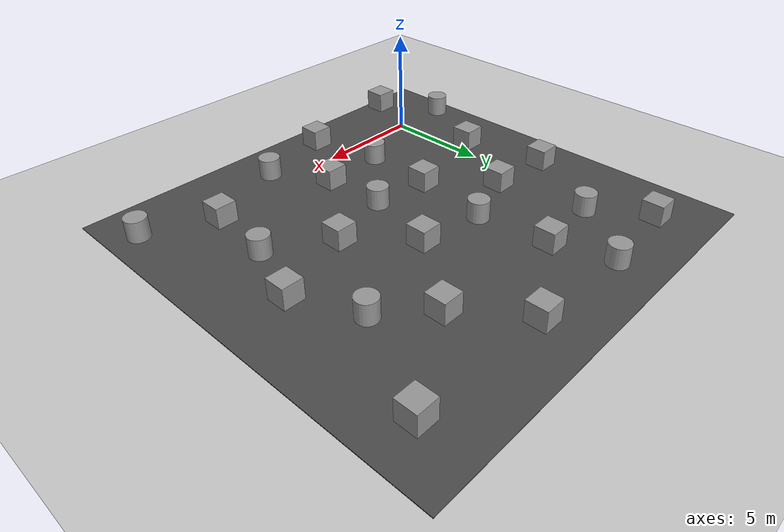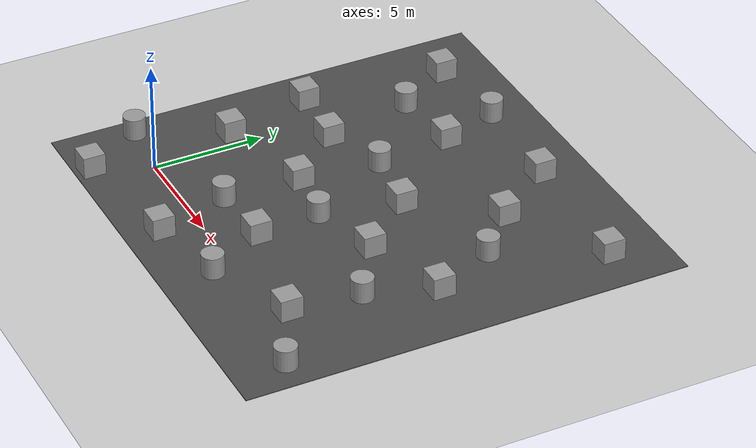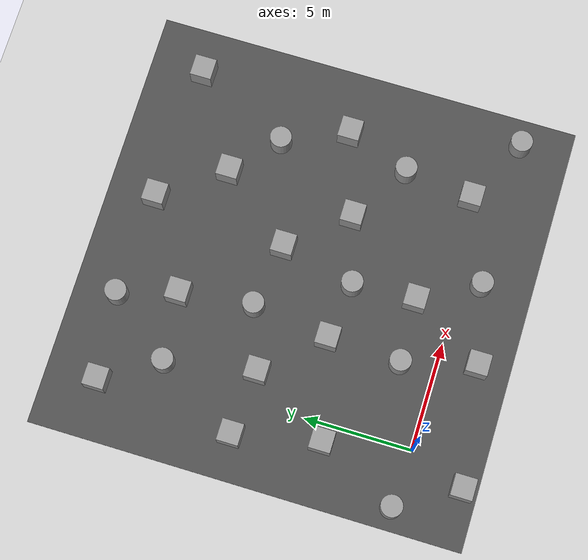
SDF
<sdf version="1.6">
 <world name="default">
  <light name="sun" type="directional">
   <cast_shadows>0</cast_shadows>
   <pose>0 0 10 0 -0 0</pose>
   <diffuse>0.8 0.8 0.8 1</diffuse>
   <specular>0.2 0.2 0.2 1</specular>
   <attenuation>
    <range>1000</range>
    <constant>0.9</constant>
    <linear>0.01</linear>
    <quadratic>0.001</quadratic>
   </attenuation>
   <direction>-0.5 0.1 -0.9</direction>
  </light>
  <model name="ground_plane">
   <static>1</static>
   <link name="link">
    <collision name="collision">
     <geometry><plane><normal>0 0 1</normal><size>100 100</size></plane></geometry>
     <surface><friction><ode><mu>100</mu><mu2>50</mu2></ode></friction></surface>
    </collision>
    <visual name="visual">
     <cast_shadows>0</cast_shadows>
     <geometry><plane><normal>0 0 1</normal><size>100 100</size></plane></geometry>
     <material>
      <script><uri>file://media/materials/scripts/gazebo.material</uri><name>Gazebo/Grey</name></script>
     </material>
    </visual>
   </link>
  </model>
  <gravity>0 0 -9.8</gravity>
  <magnetic_field>6e-06 2.3e-05 -4.2e-05</magnetic_field>
  <atmosphere type="adiabatic"/>
  <physics name="default_physics" default="0" type="ode">
   <max_step_size>0.001</max_step_size>
   <real_time_factor>1</real_time_factor>
   <real_time_update_rate>1000</real_time_update_rate>
  </physics>
  <scene><ambient>0.4 0.4 0.4 1</ambient><background>0.7 0.7 0.7 1</background><shadows>0</shadows></scene>
  <spherical_coordinates>
   <surface_model>EARTH_WGS84</surface_model>
   <latitude_deg>0</latitude_deg>
   <longitude_deg>0</longitude_deg>
   <elevation>0</elevation>
   <heading_deg>0</heading_deg>
  </spherical_coordinates>
  <model name="asphalt_plane">
   <static>1</static>
   <link name="link">
    <collision name="collision"><geometry><box><size>20 20 0.1</size></box></geometry></collision>
    <visual name="visual">
     <cast_shadows>0</cast_shadows>
     <geometry><box><size>20 20 0.1</size></box></geometry>
     <material>
      <script>
       <uri>model://asphalt_plane/materials/scripts</uri>
       <uri>model://asphalt_plane/materials/textures</uri>
       <name>vrc/asphalt</name>
      </script>
     </material>
    </visual>
   </link>
   <pose>6.31642 6.72384 -0.04 0 -0 0</pose>
  </model>
  <model name="unit_box">
   <pose>3.76433 5.01348 0.51 -0 -0 -0</pose>
   <link name="link">
    <inertial>
     <mass>1</mass>
     <inertia>
      <ixx>0.166667</ixx>
      <ixy>0</ixy>
      <ixz>0</ixz>
      <iyy>0.166667</iyy>
      <iyz>0</iyz>
      <izz>0.166667</izz>
     </inertia>
    </inertial>
    <collision name="collision"><geometry><box><size>1 1 1</size></box></geometry></collision>
    <visual name="visual">
     <geometry><box><size>1 1 1</size></box></geometry>
     <material>
      <script><name>Gazebo/Grey</name><uri>file://media/materials/scripts/gazebo.material</uri></script>
     </material>
    </visual>
   </link>
  </model>
  <model name="unit_box_0">
   <pose>6.58811 1.72796 0.51 -0 -0 -0</pose>
   <link name="link">
    <inertial>
     <mass>1</mass>
     <inertia>
      <ixx>0.166667</ixx>
      <ixy>0</ixy>
      <ixz>0</ixz>
      <iyy>0.166667</iyy>
      <iyz>0</iyz>
      <izz>0.166667</izz>
     </inertia>
    </inertial>
    <collision name="collision"><geometry><box><size>1 1 1</size></box></geometry></collision>
    <visual name="visual">
     <geometry><box><size>1 1 1</size></box></geometry>
     <material>
      <script><name>Gazebo/Grey</name><uri>file://media/materials/scripts/gazebo.material</uri></script>
     </material>
    </visual>
   </link>
  </model>
  <model name="unit_box_1">
   <pose>-0.977401 14.3044 0.51 -0 -0 -0</pose>
   <link name="link">
    <inertial>
     <mass>1</mass>
     <inertia>
      <ixx>0.166667</ixx>
      <ixy>0</ixy>
      <ixz>0</ixz>
      <iyy>0.166667</iyy>
      <iyz>0</iyz>
      <izz>0.166667</izz>
     </inertia>
    </inertial>
    <collision name="collision"><geometry><box><size>1 1 1</size></box></geometry></collision>
    <visual name="visual">
     <geometry><box><size>1 1 1</size></box></geometry>
     <material>
      <script><name>Gazebo/Grey</name><uri>file://media/materials/scripts/gazebo.material</uri></script>
     </material>
    </visual>
   </link>
  </model>
  <model name="unit_box_2">
   <pose>-1.62628 7.87108 0.51 -0 -0 -0</pose>
   <link name="link">
    <inertial>
     <mass>1</mass>
     <inertia>
      <ixx>0.166667</ixx>
      <ixy>0</ixy>
      <ixz>0</ixz>
      <iyy>0.166667</iyy>
      <iyz>0</iyz>
      <izz>0.166667</izz>
     </inertia>
    </inertial>
    <collision name="collision"><geometry><box><size>1 1 1</size></box></geometry></collision>
    <visual name="visual">
     <geometry><box><size>1 1 1</size></box></geometry>
     <material>
      <script><name>Gazebo/Grey</name><uri>file://media/materials/scripts/gazebo.material</uri></script>
     </material>
    </visual>
   </link>
  </model>
  <model name="unit_box_3">
   <pose>-0.7811 3.92801 0.51 -0 -0 -0</pose>
   <link name="link">
    <inertial>
     <mass>1</mass>
     <inertia>
      <ixx>0.166667</ixx>
      <ixy>0</ixy>
      <ixz>0</ixz>
      <iyy>0.166667</iyy>
      <iyz>0</iyz>
      <izz>0.166667</izz>
     </inertia>
    </inertial>
    <collision name="collision"><geometry><box><size>1 1 1</size></box></geometry></collision>
    <visual name="visual">
     <geometry><box><size>1 1 1</size></box></geometry>
     <material>
      <script><name>Gazebo/Grey</name><uri>file://media/materials/scripts/gazebo.material</uri></script>
     </material>
    </visual>
   </link>
  </model>
  <model name="unit_box_4">
   <pose>3.80612 12.0392 0.51 -0 -0 -0</pose>
   <link name="link">
    <inertial>
     <mass>1</mass>
     <inertia>
      <ixx>0.166667</ixx>
      <ixy>0</ixy>
      <ixz>0</ixz>
      <iyy>0.166667</iyy>
      <iyz>0</iyz>
      <izz>0.166667</izz>
     </inertia>
    </inertial>
    <collision name="collision"><geometry><box><size>1 1 1</size></box></geometry></collision>
    <visual name="visual">
     <geometry><box><size>1 1 1</size></box></geometry>
     <material>
      <script><name>Gazebo/Grey</name><uri>file://media/materials/scripts/gazebo.material</uri></script>
     </material>
    </visual>
   </link>
  </model>
  <model name="unit_box_5">
   <pose>9.95069 11.5757 0.51 -0 -0 -0</pose>
   <link name="link">
    <inertial>
     <mass>1</mass>
     <inertia>
      <ixx>0.166667</ixx>
      <ixy>0</ixy>
      <ixz>0</ixz>
      <iyy>0.166667</iyy>
      <iyz>0</iyz>
      <izz>0.166667</izz>
     </inertia>
    </inertial>
    <collision name="collision"><geometry><box><size>1 1 1</size></box></geometry></collision>
    <visual name="visual">
     <geometry><box><size>1 1 1</size></box></geometry>
     <material>
      <script><name>Gazebo/Grey</name><uri>file://media/materials/scripts/gazebo.material</uri></script>
     </material>
    </visual>
   </link>
  </model>
  <model name="unit_box_6">
   <pose>13.3114 6.77554 0.51 -0 -0 -0</pose>
   <link name="link">
    <inertial>
     <mass>1</mass>
     <inertia>
      <ixx>0.166667</ixx>
      <ixy>0</ixy>
      <ixz>0</ixz>
      <iyy>0.166667</iyy>
      <iyz>0</iyz>
      <izz>0.166667</izz>
     </inertia>
    </inertial>
    <collision name="collision"><geometry><box><size>1 1 1</size></box></geometry></collision>
    <visual name="visual">
     <geometry><box><size>1 1 1</size></box></geometry>
     <material>
      <script><name>Gazebo/Grey</name><uri>file://media/materials/scripts/gazebo.material</uri></script>
     </material>
    </visual>
   </link>
  </model>
  <model name="unit_box_7">
   <pose>11.9129 0.597794 0.51 -0 -0 -0</pose>
   <link name="link">
    <inertial>
     <mass>1</mass>
     <inertia>
      <ixx>0.166667</ixx>
      <ixy>0</ixy>
      <ixz>0</ixz>
      <iyy>0.166667</iyy>
      <iyz>0</iyz>
      <izz>0.166667</izz>
     </inertia>
    </inertial>
    <collision name="collision"><geometry><box><size>1 1 1</size></box></geometry></collision>
    <visual name="visual">
     <geometry><box><size>1 1 1</size></box></geometry>
     <material>
      <script><name>Gazebo/Grey</name><uri>file://media/materials/scripts/gazebo.material</uri></script>
     </material>
    </visual>
   </link>
  </model>
  <model name="unit_box_8">
   <pose>7.24466 8.14604 0.51 -0 -0 -0</pose>
   <link name="link">
    <inertial>
     <mass>1</mass>
     <inertia>
      <ixx>0.166667</ixx>
      <ixy>0</ixy>
      <ixz>0</ixz>
      <iyy>0.166667</iyy>
      <iyz>0</iyz>
      <izz>0.166667</izz>
     </inertia>
    </inertial>
    <collision name="collision"><geometry><box><size>1 1 1</size></box></geometry></collision>
    <visual name="visual">
     <geometry><box><size>1 1 1</size></box></geometry>
     <material>
      <script><name>Gazebo/Grey</name><uri>file://media/materials/scripts/gazebo.material</uri></script>
     </material>
    </visual>
   </link>
  </model>
  <model name="unit_box_9">
   <pose>14.2069 14.1643 0.51 -0 -0 -0</pose>
   <link name="link">
    <inertial>
     <mass>1</mass>
     <inertia>
      <ixx>0.166667</ixx>
      <ixy>0</ixy>
      <ixz>0</ixz>
      <iyy>0.166667</iyy>
      <iyz>0</iyz>
      <izz>0.166667</izz>
     </inertia>
    </inertial>
    <collision name="collision"><geometry><box><size>1 1 1</size></box></geometry></collision>
    <visual name="visual">
     <geometry><box><size>1 1 1</size></box></geometry>
     <material>
      <script><name>Gazebo/Grey</name><uri>file://media/materials/scripts/gazebo.material</uri></script>
     </material>
    </visual>
   </link>
  </model>
  <model name="unit_box_10">
   <pose>7.84812 14.4453 0.51 -0 -0 -0</pose>
   <link name="link">
    <inertial>
     <mass>1</mass>
     <inertia>
      <ixx>0.166667</ixx>
      <ixy>0</ixy>
      <ixz>0</ixz>
      <iyy>0.166667</iyy>
      <iyz>0</iyz>
      <izz>0.166667</izz>
     </inertia>
    </inertial>
    <collision name="collision"><geometry><box><size>1 1 1</size></box></geometry></collision>
    <visual name="visual">
     <geometry><box><size>1 1 1</size></box></geometry>
     <material>
      <script><name>Gazebo/Grey</name><uri>file://media/materials/scripts/gazebo.material</uri></script>
     </material>
    </visual>
   </link>
  </model>
  <model name="unit_box_11">
   <pose>4.47934 -1.74011 0.51 -0 -0 -0</pose>
   <link name="link">
    <inertial>
     <mass>1</mass>
     <inertia>
      <ixx>0.166667</ixx>
      <ixy>0</ixy>
      <ixz>0</ixz>
      <iyy>0.166667</iyy>
      <iyz>0</iyz>
      <izz>0.166667</izz>
     </inertia>
    </inertial>
    <collision name="collision"><geometry><box><size>1 1 1</size></box></geometry></collision>
    <visual name="visual">
     <geometry><box><size>1 1 1</size></box></geometry>
     <material>
      <script><name>Gazebo/Grey</name><uri>file://media/materials/scripts/gazebo.material</uri></script>
     </material>
    </visual>
   </link>
  </model>
  <model name="unit_box_12">
   <pose>9.50501 5.53703 0.51 -0 -0 -0</pose>
   <link name="link">
    <inertial>
     <mass>1</mass>
     <inertia>
      <ixx>0.166667</ixx>
      <ixy>0</ixy>
      <ixz>0</ixz>
      <iyy>0.166667</iyy>
      <iyz>0</iyz>
      <izz>0.166667</izz>
     </inertia>
    </inertial>
    <collision name="collision"><geometry><box><size>1 1 1</size></box></geometry></collision>
    <visual name="visual">
     <geometry><box><size>1 1 1</size></box></geometry>
     <material>
      <script><name>Gazebo/Grey</name><uri>file://media/materials/scripts/gazebo.material</uri></script>
     </material>
    </visual>
   </link>
  </model>
  <model name="unit_cylinder">
   <pose>8.07102 -0.938171 0.51 -1e-06 -0 3e-05</pose>
   <link name="link">
    <inertial>
     <mass>1</mass>
     <inertia><ixx>0.145833</ixx><ixy>0</ixy><ixz>0</ixz><iyy>0.145833</iyy><iyz>0</iyz><izz>0.125</izz></inertia>
    </inertial>
    <collision name="collision">
     <geometry><cylinder><radius>0.5</radius><length>1</length></cylinder></geometry>
    </collision>
    <visual name="visual">
     <geometry><cylinder><radius>0.5</radius><length>1</length></cylinder></geometry>
     <material>
      <script><name>Gazebo/Grey</name><uri>file://media/materials/scripts/gazebo.material</uri></script>
     </material>
    </visual>
   </link>
  </model>
  <model name="unit_cylinder_0">
   <pose>12.258 3.80867 0.51 0 -0 -1e-06</pose>
   <link name="link">
    <inertial>
     <mass>1</mass>
     <inertia><ixx>0.145833</ixx><ixy>0</ixy><ixz>0</ixz><iyy>0.145833</iyy><iyz>0</iyz><izz>0.125</izz></inertia>
    </inertial>
    <collision name="collision">
     <geometry><cylinder><radius>0.5</radius><length>1</length></cylinder></geometry>
    </collision>
    <visual name="visual">
     <geometry><cylinder><radius>0.5</radius><length>1</length></cylinder></geometry>
     <material>
      <script><name>Gazebo/Grey</name><uri>file://media/materials/scripts/gazebo.material</uri></script>
     </material>
    </visual>
   </link>
  </model>
  <model name="unit_cylinder_1">
   <pose>0.609347 11.7244 0.51 0 0 -3.7e-05</pose>
   <link name="link">
    <inertial>
     <mass>1</mass>
     <inertia><ixx>0.145833</ixx><ixy>0</ixy><ixz>0</ixz><iyy>0.145833</iyy><iyz>0</iyz><izz>0.125</izz></inertia>
    </inertial>
    <collision name="collision">
     <geometry><cylinder><radius>0.5</radius><length>1</length></cylinder></geometry>
    </collision>
    <visual name="visual">
     <geometry><cylinder><radius>0.5</radius><length>1</length></cylinder></geometry>
     <material>
      <script><name>Gazebo/Grey</name><uri>file://media/materials/scripts/gazebo.material</uri></script>
     </material>
    </visual>
   </link>
  </model>
  <model name="unit_cylinder_2">
   <pose>14.9773 -0.916204 0.51 0 0 -1.7e-05</pose>
   <link name="link">
    <inertial>
     <mass>1</mass>
     <inertia><ixx>0.145833</ixx><ixy>0</ixy><ixz>0</ixz><iyy>0.145833</iyy><iyz>0</iyz><izz>0.125</izz></inertia>
    </inertial>
    <collision name="collision">
     <geometry><cylinder><radius>0.5</radius><length>1</length></cylinder></geometry>
    </collision>
    <visual name="visual">
     <geometry><cylinder><radius>0.5</radius><length>1</length></cylinder></geometry>
     <material>
      <script><name>Gazebo/Grey</name><uri>file://media/materials/scripts/gazebo.material</uri></script>
     </material>
    </visual>
   </link>
  </model>
  <model name="unit_cylinder_3">
   <pose>-2.66856 0.217331 0.50999 0 -0 -2.3e-05</pose>
   <link name="link">
    <inertial>
     <mass>1</mass>
     <inertia><ixx>0.145833</ixx><ixy>0</ixy><ixz>0</ixz><iyy>0.145833</iyy><iyz>0</iyz><izz>0.125</izz></inertia>
    </inertial>
    <collision name="collision">
     <geometry><cylinder><radius>0.5</radius><length>1</length></cylinder></geometry>
    </collision>
    <visual name="visual">
     <geometry><cylinder><radius>0.5</radius><length>1</length></cylinder></geometry>
     <material>
      <script><name>Gazebo/Grey</name><uri>file://media/materials/scripts/gazebo.material</uri></script>
     </material>
    </visual>
   </link>
  </model>
  <model name="unit_cylinder_4">
   <pose>3.59825 1.60732 0.510002 -4e-06 -1e-06 -2e-06</pose>
   <link name="link">
    <inertial>
     <mass>1</mass>
     <inertia><ixx>0.145833</ixx><ixy>0</ixy><ixz>0</ixz><iyy>0.145833</iyy><iyz>0</iyz><izz>0.125</izz></inertia>
    </inertial>
    <collision name="collision">
     <geometry><cylinder><radius>0.5</radius><length>1</length></cylinder></geometry>
    </collision>
    <visual name="visual">
     <geometry><cylinder><radius>0.5</radius><length>1</length></cylinder></geometry>
     <material>
      <script><name>Gazebo/Grey</name><uri>file://media/materials/scripts/gazebo.material</uri></script>
     </material>
    </visual>
   </link>
  </model>
  <model name="unit_cylinder_5">
   <pose>4.20843 8.62832 0.50999 0 -0 2.5e-05</pose>
   <link name="link">
    <inertial>
     <mass>1</mass>
     <inertia><ixx>0.145833</ixx><ixy>0</ixy><ixz>0</ixz><iyy>0.145833</iyy><iyz>0</iyz><izz>0.125</izz></inertia>
    </inertial>
    <collision name="collision">
     <geometry><cylinder><radius>0.5</radius><length>1</length></cylinder></geometry>
    </collision>
    <visual name="visual">
     <geometry><cylinder><radius>0.5</radius><length>1</length></cylinder></geometry>
     <material>
      <script><name>Gazebo/Grey</name><uri>file://media/materials/scripts/gazebo.material</uri></script>
     </material>
    </visual>
   </link>
  </model>
  <model name="unit_cylinder_6">
   <pose>6.40802 4.6633 0.509998 4e-06 1e-06 -2e-06</pose>
   <link name="link">
    <inertial>
     <mass>1</mass>
     <inertia><ixx>0.145833</ixx><ixy>0</ixy><ixz>0</ixz><iyy>0.145833</iyy><iyz>0</iyz><izz>0.125</izz></inertia>
    </inertial>
    <collision name="collision">
     <geometry><cylinder><radius>0.5</radius><length>1</length></cylinder></geometry>
    </collision>
    <visual name="visual">
     <geometry><cylinder><radius>0.5</radius><length>1</length></cylinder></geometry>
     <material>
      <script><name>Gazebo/Grey</name><uri>file://media/materials/scripts/gazebo.material</uri></script>
     </material>
    </visual>
   </link>
  </model>
  <model name="unit_cylinder_7">
   <pose>2.97515 14.6989 0.51 -0 -0 -2e-05</pose>
   <link name="link">
    <inertial>
     <mass>1</mass>
     <inertia><ixx>0.145833</ixx><ixy>0</ixy><ixz>0</ixz><iyy>0.145833</iyy><iyz>0</iyz><izz>0.125</izz></inertia>
    </inertial>
    <collision name="collision">
     <geometry><cylinder><radius>0.5</radius><length>1</length></cylinder></geometry>
    </collision>
    <visual name="visual">
     <geometry><cylinder><radius>0.5</radius><length>1</length></cylinder></geometry>
     <material>
      <script><name>Gazebo/Grey</name><uri>file://media/materials/scripts/gazebo.material</uri></script>
     </material>
    </visual>
   </link>
  </model>
  <model name="unit_cylinder_8">
   <pose>11.9834 9.72161 0.50999 0 -0 1.7e-05</pose>
   <link name="link">
    <inertial>
     <mass>1</mass>
     <inertia><ixx>0.145833</ixx><ixy>0</ixy><ixz>0</ixz><iyy>0.145833</iyy><iyz>0</iyz><izz>0.125</izz></inertia>
    </inertial>
    <collision name="collision">
     <geometry><cylinder><radius>0.5</radius><length>1</length></cylinder></geometry>
    </collision>
    <visual name="visual">
     <geometry><cylinder><radius>0.5</radius><length>1</length></cylinder></geometry>
     <material>
      <script><name>Gazebo/Grey</name><uri>file://media/materials/scripts/gazebo.material</uri></script>
     </material>
    </visual>
   </link>
  </model>
  <model name="unit_box_13">
   <pose>1.40292 7.59471 0.51 -0 -0 -0</pose>
   <link name="link">
    <inertial>
     <mass>1</mass>
     <inertia>
      <ixx>0.166667</ixx>
      <ixy>0</ixy>
      <ixz>0</ixz>
      <iyy>0.166667</iyy>
      <iyz>0</iyz>
      <izz>0.166667</izz>
     </inertia>
    </inertial>
    <collision name="collision"><geometry><box><size>1 1 1</size></box></geometry></collision>
    <visual name="visual">
     <geometry><box><size>1 1 1</size></box></geometry>
     <material>
      <script><name>Gazebo/Grey</name><uri>file://media/materials/scripts/gazebo.material</uri></script>
     </material>
    </visual>
   </link>
  </model>
  <model name="unit_box_14">
   <pose>-0.981082 -2.55439 0.51 -0 -0 -0</pose>
   <link name="link">
    <inertial>
     <mass>1</mass>
     <inertia>
      <ixx>0.166667</ixx>
      <ixy>0</ixy>
      <ixz>0</ixz>
      <iyy>0.166667</iyy>
      <iyz>0</iyz>
      <izz>0.166667</izz>
     </inertia>
    </inertial>
    <collision name="collision"><geometry><box><size>1 1 1</size></box></geometry></collision>
    <visual name="visual">
     <geometry><box><size>1 1 1</size></box></geometry>
     <material>
      <script><name>Gazebo/Grey</name><uri>file://media/materials/scripts/gazebo.material</uri></script>
     </material>
    </visual>
   </link>
  </model>
 </world>
</sdf>
